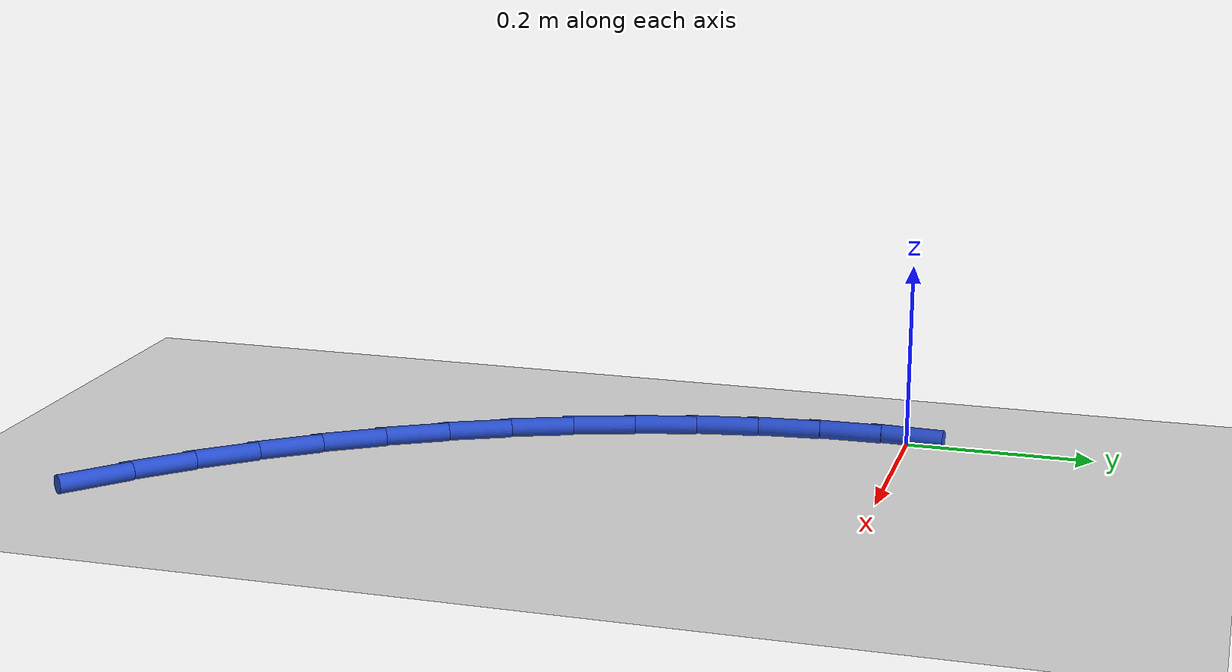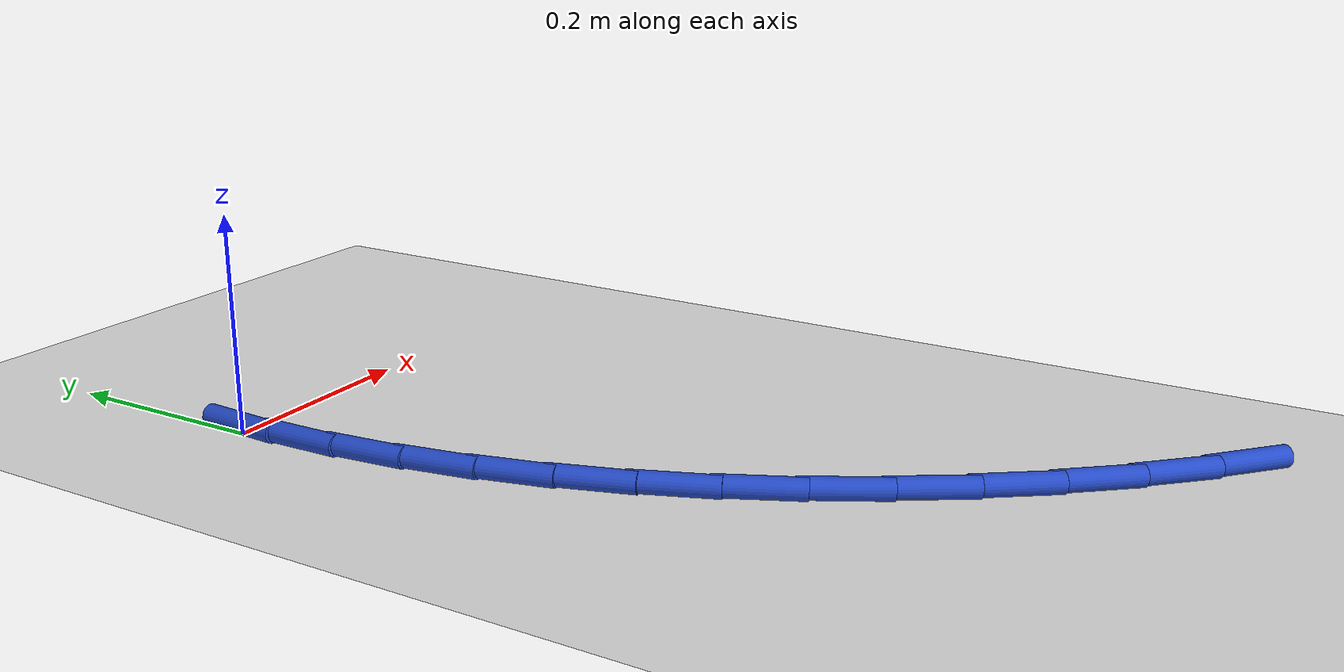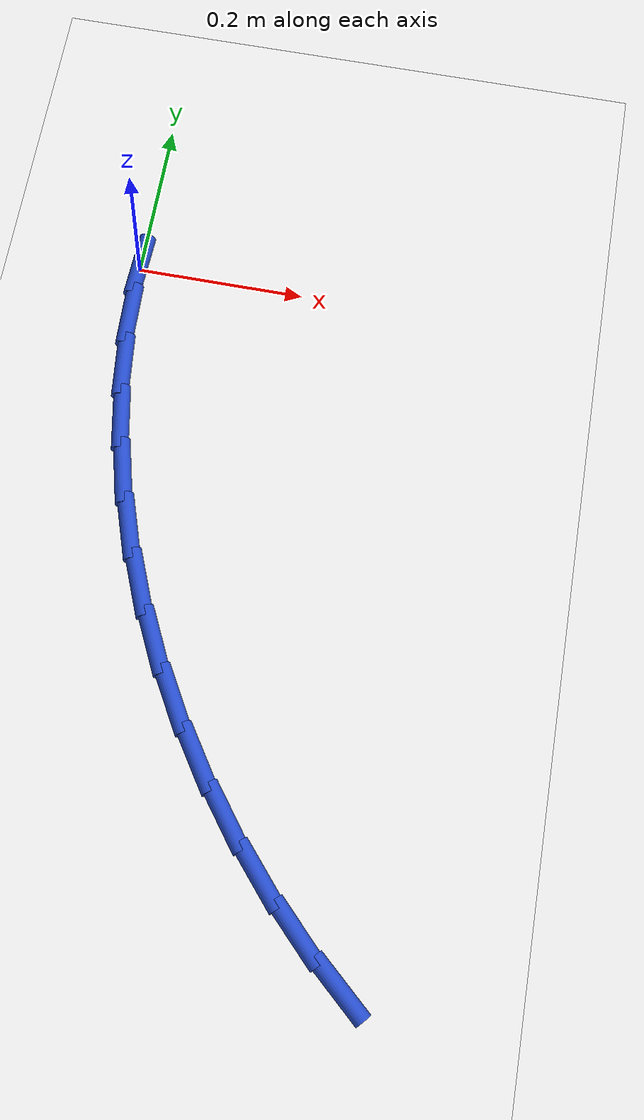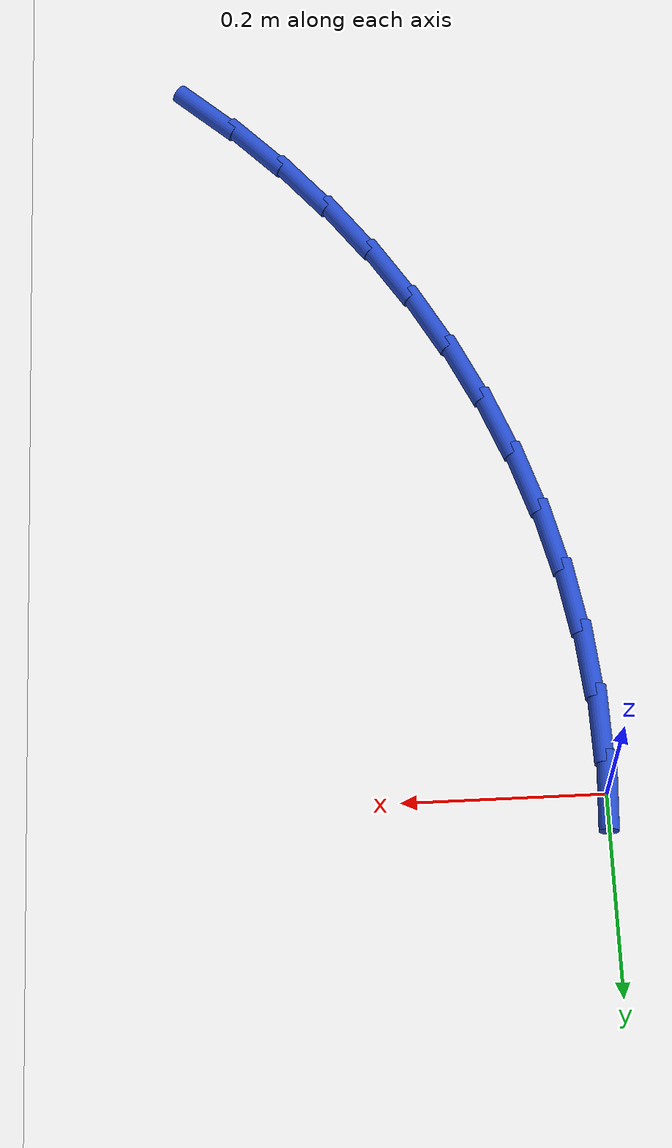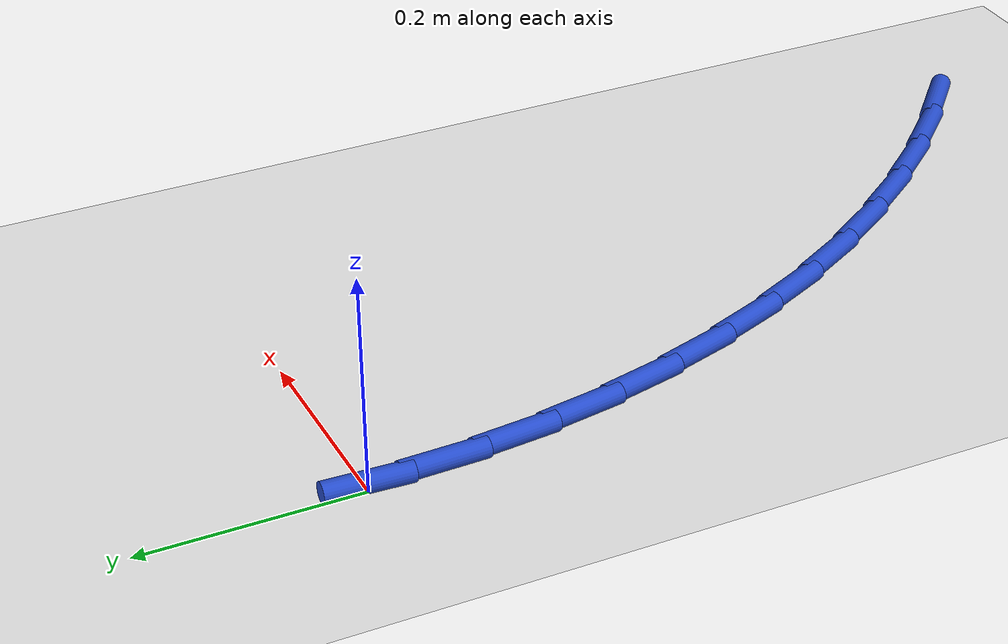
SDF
<sdf version="1.6">
 <world name="default">
  <model name="ground_plane">
   <static>1</static>
   <link name="link">
    <collision name="collision">
     <geometry><plane><normal>0 0 1</normal><size>100 100</size></plane></geometry>
     <surface><friction><ode><mu>100</mu><mu2>50</mu2></ode></friction></surface>
    </collision>
    <visual name="visual">
     <cast_shadows>0</cast_shadows>
     <geometry><plane><normal>0 0 1</normal><size>100 100</size></plane></geometry>
     <material>
      <script><uri>file://media/materials/scripts/gazebo.material</uri><name>Gazebo/WhiteGlow</name></script>
     </material>
    </visual>
   </link>
  </model>
  <model name="line">
   <link name="link_0">
    <pose>-6.591949208711867e-17 1.1102230246251565e-16 0.01 0 1.57 1.5239403435700396</pose>
    <collision name="collision">
     <geometry><cylinder><radius>0.01</radius><length>0.08</length></cylinder></geometry>
    </collision>
    <visual name="visual">
     <material>
      <script><name>Gazebo/Blue</name><uri>file://media/materials/scripts/gazebo.material</uri></script>
     </material>
     <geometry><cylinder><radius>0.01</radius><length>0.08</length></cylinder></geometry>
    </visual>
   </link>
   <link name="link_97">
    <pose>0.3708101951574508 -0.7826017335833125 0.01 0 1.57 -0.7259591218164831</pose>
    <collision name="collision">
     <geometry><cylinder><radius>0.01</radius><length>0.08</length></cylinder></geometry>
    </collision>
    <visual name="visual">
     <material>
      <script><name>Gazebo/Blue</name><uri>file://media/materials/scripts/gazebo.material</uri></script>
     </material>
     <geometry><cylinder><radius>0.01</radius><length>0.08</length></cylinder></geometry>
    </visual>
   </link>
   <link name="link_98">
    <pose>0.31915692381679034 -0.7367508506137431 0.01 0 1.57 -0.7969635699434979</pose>
    <collision name="collision">
     <geometry><cylinder><radius>0.01</radius><length>0.08</length></cylinder></geometry>
    </collision>
    <visual name="visual">
     <material>
      <script><name>Gazebo/Blue</name><uri>file://media/materials/scripts/gazebo.material</uri></script>
     </material>
     <geometry><cylinder><radius>0.01</radius><length>0.08</length></cylinder></geometry>
    </visual>
   </link>
   <link name="link_99">
    <pose>0.27047404969569494 -0.6869286747450778 0.01 0 1.57 -0.8648551106673239</pose>
    <collision name="collision">
     <geometry><cylinder><radius>0.01</radius><length>0.08</length></cylinder></geometry>
    </collision>
    <visual name="visual">
     <material>
      <script><name>Gazebo/Blue</name><uri>file://media/materials/scripts/gazebo.material</uri></script>
     </material>
     <geometry><cylinder><radius>0.01</radius><length>0.08</length></cylinder></geometry>
    </visual>
   </link>
   <link name="link_100">
    <pose>0.22507102575291751 -0.6336697326737709 0.01 0 1.57 -0.9308048038051687</pose>
    <collision name="collision">
     <geometry><cylinder><radius>0.01</radius><length>0.08</length></cylinder></geometry>
    </collision>
    <visual name="visual">
     <material>
      <script><name>Gazebo/Blue</name><uri>file://media/materials/scripts/gazebo.material</uri></script>
     </material>
     <geometry><cylinder><radius>0.01</radius><length>0.08</length></cylinder></geometry>
    </visual>
   </link>
   <link name="link_101">
    <pose>0.1832573049472132 -0.5775085510962786 0.01 0 1.57 -0.9959695683461827</pose>
    <collision name="collision">
     <geometry><cylinder><radius>0.01</radius><length>0.08</length></cylinder></geometry>
    </collision>
    <visual name="visual">
     <material>
      <script><name>Gazebo/Blue</name><uri>file://media/materials/scripts/gazebo.material</uri></script>
     </material>
     <geometry><cylinder><radius>0.01</radius><length>0.08</length></cylinder></geometry>
    </visual>
   </link>
   <link name="link_102">
    <pose>0.14534070674108424 -0.5189771741711015 0.01 0 1.57 -1.0613607969556236</pose>
    <collision name="collision">
     <geometry><cylinder><radius>0.01</radius><length>0.08</length></cylinder></geometry>
    </collision>
    <visual name="visual">
     <material>
      <script><name>Gazebo/Blue</name><uri>file://media/materials/scripts/gazebo.material</uri></script>
     </material>
     <geometry><cylinder><radius>0.01</radius><length>0.08</length></cylinder></geometry>
    </visual>
   </link>
   <link name="link_103">
    <pose>0.1115506496246484 -0.45848849464183034 0.01 0 1.57 -1.127356308076461</pose>
    <collision name="collision">
     <geometry><cylinder><radius>0.01</radius><length>0.08</length></cylinder></geometry>
    </collision>
    <visual name="visual">
     <material>
      <script><name>Gazebo/Blue</name><uri>file://media/materials/scripts/gazebo.material</uri></script>
     </material>
     <geometry><cylinder><radius>0.01</radius><length>0.08</length></cylinder></geometry>
    </visual>
   </link>
   <link name="link_104">
    <pose>0.08200513619681742 -0.3962860787669768 0.01 0 1.57 -1.1941230269916168</pose>
    <collision name="collision">
     <geometry><cylinder><radius>0.01</radius><length>0.08</length></cylinder></geometry>
    </collision>
    <visual name="visual">
     <material>
      <script><name>Gazebo/Blue</name><uri>file://media/materials/scripts/gazebo.material</uri></script>
     </material>
     <geometry><cylinder><radius>0.01</radius><length>0.08</length></cylinder></geometry>
    </visual>
   </link>
   <link name="link_105">
    <pose>0.05681367586668947 -0.3326005851133167 0.01 0 1.57 -1.2618232085936774</pose>
    <collision name="collision">
     <geometry><cylinder><radius>0.01</radius><length>0.08</length></cylinder></geometry>
    </collision>
    <visual name="visual">
     <material>
      <script><name>Gazebo/Blue</name><uri>file://media/materials/scripts/gazebo.material</uri></script>
     </material>
     <geometry><cylinder><radius>0.01</radius><length>0.08</length></cylinder></geometry>
    </visual>
   </link>
   <link name="link_106">
    <pose>0.03608577804336137 -0.26766267224762247 0.01 0 1.57 -1.3306047731790807</pose>
    <collision name="collision">
     <geometry><cylinder><radius>0.01</radius><length>0.08</length></cylinder></geometry>
    </collision>
    <visual name="visual">
     <material>
      <script><name>Gazebo/Blue</name><uri>file://media/materials/scripts/gazebo.material</uri></script>
     </material>
     <geometry><cylinder><radius>0.01</radius><length>0.08</length></cylinder></geometry>
    </visual>
   </link>
   <link name="link_107">
    <pose>0.019930952135931098 -0.20170299873667005 0.01 0 1.57 -1.4005923315390767</pose>
    <collision name="collision">
     <geometry><cylinder><radius>0.01</radius><length>0.08</length></cylinder></geometry>
    </collision>
    <visual name="visual">
     <material>
      <script><name>Gazebo/Blue</name><uri>file://media/materials/scripts/gazebo.material</uri></script>
     </material>
     <geometry><cylinder><radius>0.01</radius><length>0.08</length></cylinder></geometry>
    </visual>
   </link>
   <link name="link_108">
    <pose>0.00845870755349569 -0.13495222314723215 0.01 0 1.57 -1.471877433441315</pose>
    <collision name="collision">
     <geometry><cylinder><radius>0.01</radius><length>0.08</length></cylinder></geometry>
    </collision>
    <visual name="visual">
     <material>
      <script><name>Gazebo/Blue</name><uri>file://media/materials/scripts/gazebo.material</uri></script>
     </material>
     <geometry><cylinder><radius>0.01</radius><length>0.08</length></cylinder></geometry>
    </visual>
   </link>
   <link name="link_109">
    <pose>0.0017785537051528758 -0.06764100404608449 0.01 0 1.57 -1.5445083670364737</pose>
    <collision name="collision">
     <geometry><cylinder><radius>0.01</radius><length>0.08</length></cylinder></geometry>
    </collision>
    <visual name="visual">
     <material>
      <script><name>Gazebo/Blue</name><uri>file://media/materials/scripts/gazebo.material</uri></script>
     </material>
     <geometry><cylinder><radius>0.01</radius><length>0.08</length></cylinder></geometry>
    </visual>
   </link>
  </model>
 </world>
</sdf>
